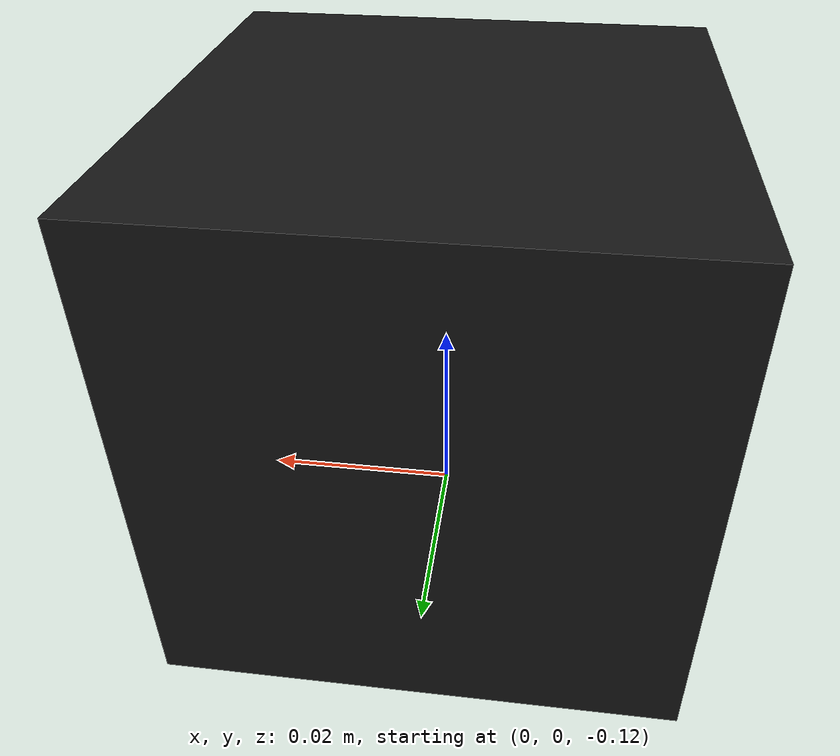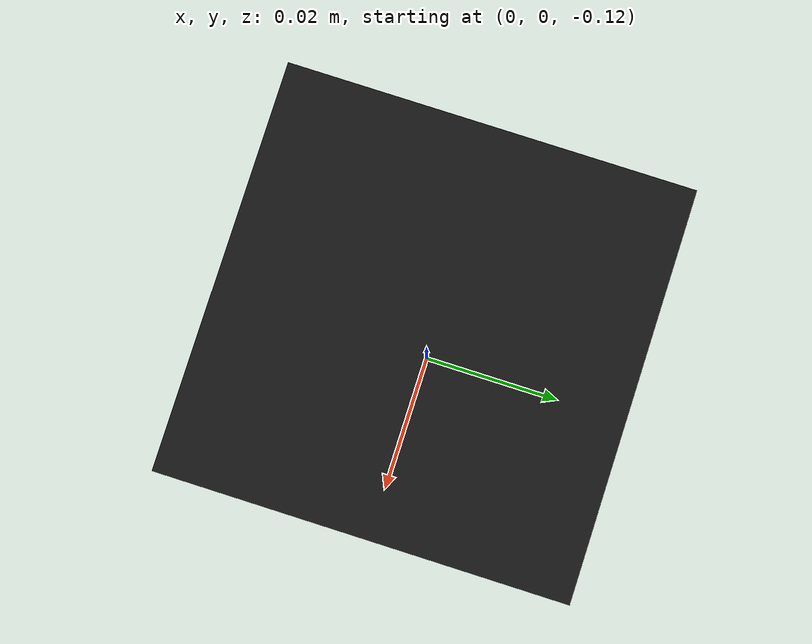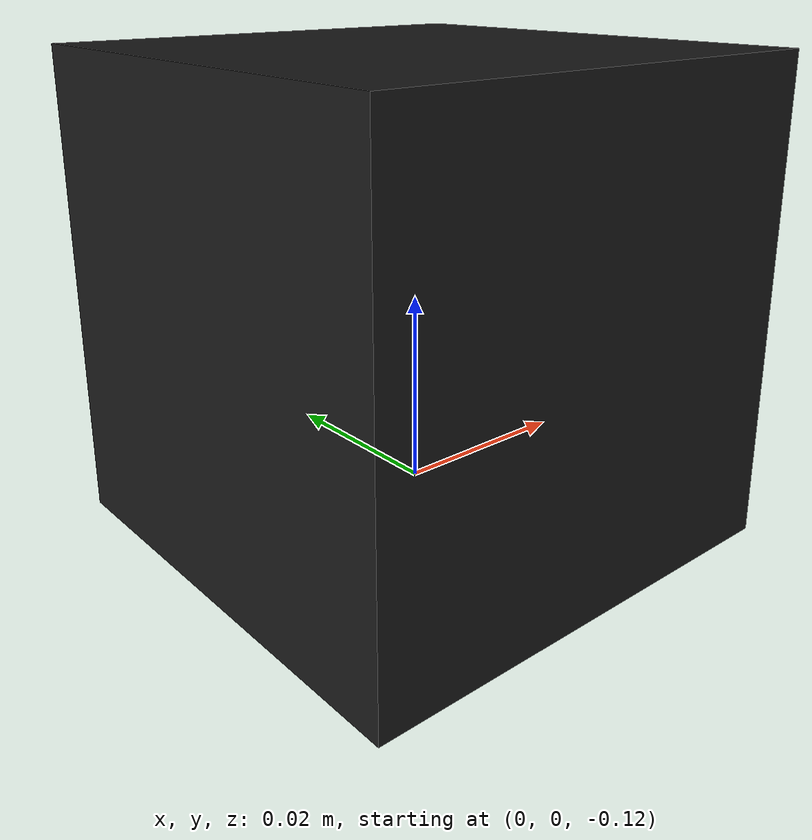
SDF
<?xml version="1.0"?>
<sdf version="1.9">
  <model name="downward_radar_sensor">
    <link name="radar_link">
      <pose>0 0 -0.1 0 1.5708 0</pose>  <!-- Position the radar 0.1m below the base_link -->

      <!-- Add physical properties (mass and inertia) -->
      <inertial>
        <mass>0.01</mass>  <!-- Very low mass, e.g., 0.01 kg -->
        <inertia>
          <ixx>1e-6</ixx>  <!-- Low inertia in x direction -->
          <iyy>1e-6</iyy>  <!-- Low inertia in y direction -->
          <izz>1e-6</izz>  <!-- Low inertia in z direction -->
          <ixy>0</ixy>
          <ixz>0</ixz>
          <iyz>0</iyz>
        </inertia>
      </inertial>

      <!-- Visual representation of the radar as a small box -->
      <visual name="radar_visual">
        <geometry>
          <box>
            <size>0.05 0.05 0.05</size>  <!-- Small 5cm x 5cm x 5cm box -->
          </box>
        </geometry>
        <material>
          <ambient>0.1 0.1 0.1</ambient>  <!-- Green color -->
          <diffuse>0.1 0.1 0.1</diffuse>  <!-- Green color -->
        </material>
      </visual>

      <!-- Downward-facing GPU ray sensor -->
      <sensor name="downward_radar_sensor" type="gpu_ray">
        <topic>alt_lidar</topic>
        <update_rate>30</update_rate>  <!-- Update frequency in Hz -->

        <ray>
          <scan>
            <horizontal>
              <samples>1</samples>  <!-- Single ray for altitude measurement -->
              <resolution>1</resolution>
              <min_angle>0</min_angle>
              <max_angle>0</max_angle>
            </horizontal>
          </scan>
          <range>
            <min>0.1</min>         <!-- Minimum range in meters -->
            <max>50.0</max>        <!-- Maximum range in meters -->
            <resolution>0.01</resolution> <!-- Range resolution -->
          </range>
        </ray>

        <always_on>1</always_on>
        <visualize>true</visualize>
      </sensor>
    </link>
  </model>
</sdf>
